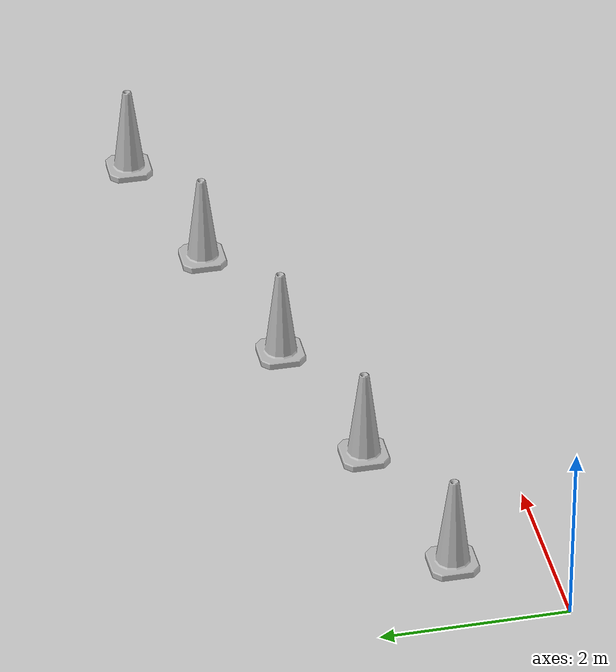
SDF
<sdf version="1.6">
 <world name="default">
  <include><uri>model://ground_plane</uri></include>
  <include><uri>model://sun</uri></include>
  <model name="construction_cone_1">
   <include><uri>model://construction_cone</uri></include>
   <pose>1 1 0 0 0 0</pose>
  </model>
  <model name="construction_cone_2">
   <include><uri>model://construction_cone</uri></include>
   <pose>3 1.5 0 0 0 0</pose>
  </model>
  <model name="construction_cone_3">
   <include><uri>model://construction_cone</uri></include>
   <pose>5 2 0 0 0 0</pose>
  </model>
  <model name="construction_cone_4">
   <include><uri>model://construction_cone</uri></include>
   <pose>7 2.5 0 0 0 0</pose>
  </model>
  <model name="construction_cone_5">
   <include><uri>model://construction_cone</uri></include>
   <pose>9 3 0 0 0 0</pose>
  </model>
 </world>
</sdf>

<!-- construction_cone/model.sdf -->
<sdf version="1.5">
  <model name="Construction Cone">
    <link name="link">
      <collision name="collision">
        <geometry>
          <mesh>
            <scale>10 10 10</scale>
            <uri>file://isr-testbed/construction_cone/meshes/construction_cone.dae</uri>
          </mesh>
        </geometry>
      </collision>
      <visual name="visual">
        <geometry>
          <mesh>
            <scale>10 10 10</scale>
            <uri>file://isr-testbed/construction_cone/meshes/construction_cone.dae</uri>
          </mesh>
        </geometry>
      </visual>
    </link>
  </model>
</sdf>
